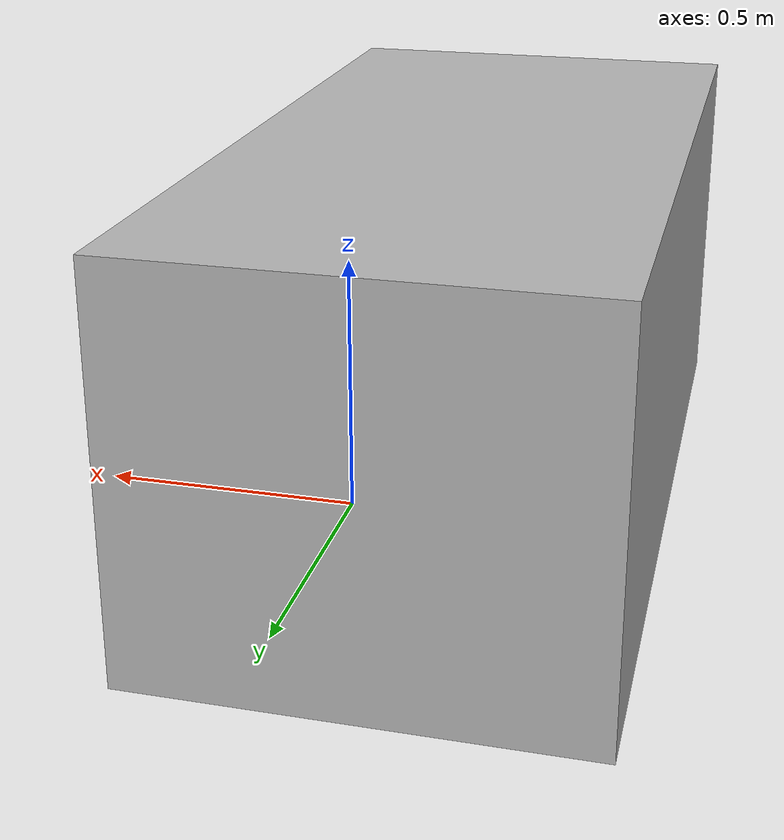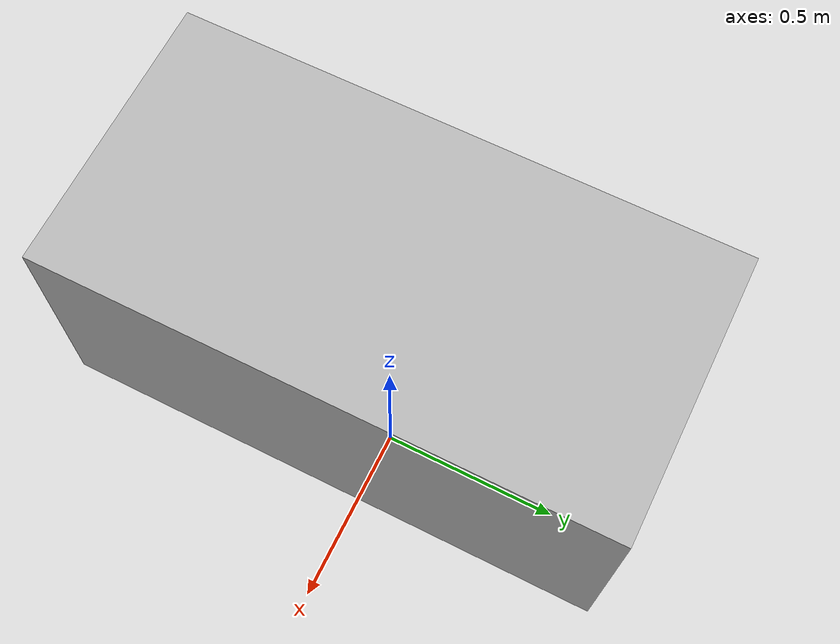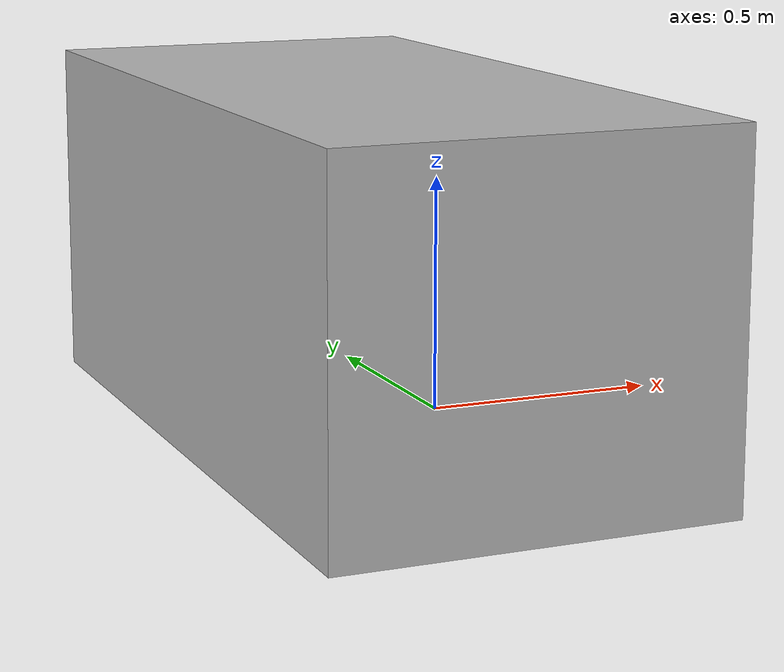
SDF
<?xml version="1.0" ?>
<sdf version="1.6">
  <model name="table">
    <static>true</static>
    <link name="link">
      <collision name="collision">
        <pose> -0.6 -0.9 0 1.5707963 0 1.5707963 </pose>
        <geometry>
          <mesh>
            <scale>0.001 0.001 0.001 </scale>
            <uri>model://table/meshes/Table.dae</uri>
          </mesh>
        </geometry>
      </collision>

      <visual name="visual">
        <pose> -0.6 -0.9 0 1.5707963 0 1.5707963 </pose>
        <geometry>
          <mesh>
            <scale>0.001 0.001 0.001 </scale>
            <uri>model://table/meshes/Table.dae</uri>
          </mesh>
        </geometry>
      </visual>
    </link>
  </model>
</sdf>
